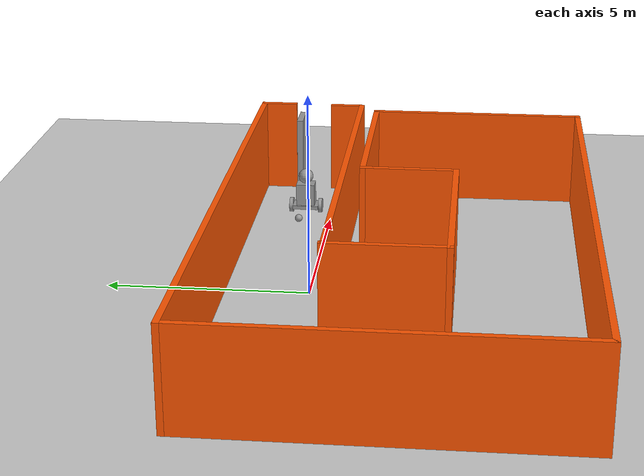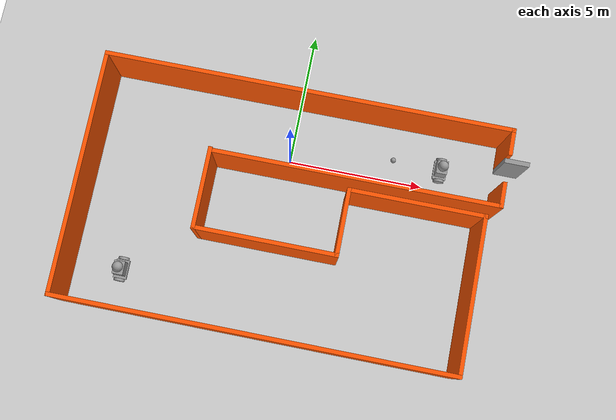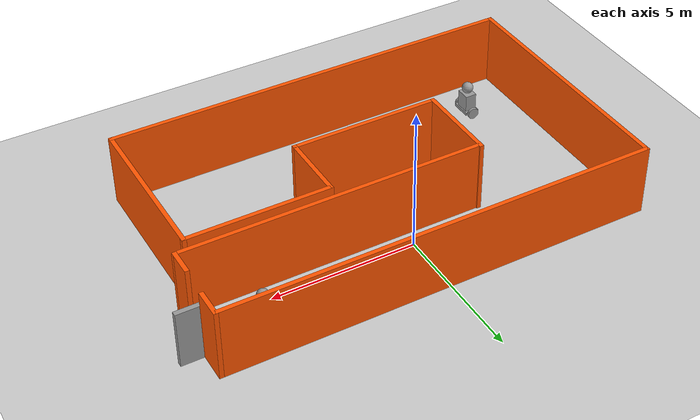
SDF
<sdf version="1.6">
 <world name="default">
  <light name="sun" type="directional">
   <pose>0 0 10 0 -0 0</pose>
   <diffuse>0.8 0.8 0.8 1</diffuse>
   <specular>0.2 0.2 0.2 1</specular>
   <attenuation>
    <range>1000</range>
    <constant>0.9</constant>
    <linear>0.01</linear>
    <quadratic>0.001</quadratic>
   </attenuation>
   <direction>-0.5 0.1 -0.9</direction>
  </light>
  <model name="ground_plane">
   <static>1</static>
   <link name="link">
    <collision name="collision">
     <geometry><plane><normal>0 0 1</normal><size>100 100</size></plane></geometry>
     <surface><friction><ode><mu>100</mu><mu2>50</mu2></ode></friction></surface>
    </collision>
    <visual name="visual">
     <cast_shadows>0</cast_shadows>
     <geometry><plane><normal>0 0 1</normal><size>100 100</size></plane></geometry>
     <material>
      <script><uri>file://media/materials/scripts/gazebo.material</uri><name>Gazebo/Grey</name></script>
     </material>
    </visual>
   </link>
  </model>
  <gravity>0 0 -9.8</gravity>
  <magnetic_field>6e-06 2.3e-05 -4.2e-05</magnetic_field>
  <atmosphere type="adiabatic"/>
  <physics name="default_physics" default="0" type="ode">
   <max_step_size>0.001</max_step_size>
   <real_time_factor>1</real_time_factor>
   <real_time_update_rate>1000</real_time_update_rate>
  </physics>
  <scene><ambient>0.4 0.4 0.4 1</ambient><background>0.7 0.7 0.7 1</background><shadows>1</shadows></scene>
  <spherical_coordinates>
   <surface_model>EARTH_WGS84</surface_model>
   <latitude_deg>0</latitude_deg>
   <longitude_deg>0</longitude_deg>
   <elevation>0</elevation>
   <heading_deg>0</heading_deg>
  </spherical_coordinates>
  <model name="robot">
   <link name="link_0">
    <pose>0 0 -0.23 0 -0 0</pose>
    <inertial>
     <mass>1</mass>
     <inertia>
      <ixx>0.166667</ixx>
      <ixy>0</ixy>
      <ixz>0</ixz>
      <iyy>0.166667</iyy>
      <iyz>0</iyz>
      <izz>0.166667</izz>
     </inertia>
    </inertial>
    <visual name="visual">
     <geometry><box><size>0.5 0.7 0.1</size></box></geometry>
     <material>
      <lighting>1</lighting>
      <script><uri>file://media/materials/scripts/gazebo.material</uri><name>Gazebo/Grey</name></script>
      <shader type="pixel"><normal_map>__default__</normal_map></shader>
      <ambient>0.3 0.3 0.3 1</ambient>
      <diffuse>0.7 0.7 0.7 1</diffuse>
      <specular>0.01 0.01 0.01 1</specular>
      <emissive>0 0 0 1</emissive>
     </material>
    </visual>
    <collision name="collision">
     <geometry><box><size>0.5 0.7 0.1</size></box></geometry>
     <surface>
      <friction>
       <ode><mu>1</mu><mu2>1</mu2><fdir1>0 0 0</fdir1><slip1>0</slip1><slip2>0</slip2></ode>
       <torsional>
        <coefficient>1</coefficient>
        <patch_radius>0</patch_radius>
        <surface_radius>0</surface_radius>
        <use_patch_radius>1</use_patch_radius>
        <ode><slip>0</slip></ode>
       </torsional>
      </friction>
      <bounce><restitution_coefficient>0</restitution_coefficient><threshold>1e+06</threshold></bounce>
      <contact>
       <collide_without_contact>0</collide_without_contact>
       <collide_without_contact_bitmask>1</collide_without_contact_bitmask>
       <collide_bitmask>1</collide_bitmask>
       <ode>
        <soft_cfm>0</soft_cfm>
        <soft_erp>0.2</soft_erp>
        <kp>1e+13</kp>
        <kd>1</kd>
        <max_vel>0.01</max_vel>
        <min_depth>0</min_depth>
       </ode>
       <bullet>
        <split_impulse>1</split_impulse>
        <split_impulse_penetration_threshold>-0.01</split_impulse_penetration_threshold>
        <soft_cfm>0</soft_cfm>
        <soft_erp>0.2</soft_erp>
        <kp>1e+13</kp>
        <kd>1</kd>
       </bullet>
      </contact>
     </surface>
    </collision>
   </link>
   <link name="link_1">
    <pose>0 -0.400019 -0.23 1.5707 -0 0</pose>
    <inertial>
     <mass>1</mass>
     <inertia><ixx>0.145833</ixx><ixy>0</ixy><ixz>0</ixz><iyy>0.145833</iyy><iyz>0</iyz><izz>0.125</izz></inertia>
    </inertial>
    <visual name="visual">
     <geometry><cylinder><radius>0.2</radius><length>0.1</length></cylinder></geometry>
     <material>
      <lighting>1</lighting>
      <script><uri>file://media/materials/scripts/gazebo.material</uri><name>Gazebo/Grey</name></script>
      <shader type="pixel"><normal_map>__default__</normal_map></shader>
      <ambient>0.3 0.3 0.3 1</ambient>
      <diffuse>0.7 0.7 0.7 1</diffuse>
      <specular>0.01 0.01 0.01 1</specular>
      <emissive>0 0 0 1</emissive>
     </material>
    </visual>
    <collision name="collision">
     <geometry><cylinder><radius>0.2</radius><length>0.1</length></cylinder></geometry>
     <surface>
      <friction>
       <ode><mu>1</mu><mu2>1</mu2><fdir1>0 0 0</fdir1><slip1>0</slip1><slip2>0</slip2></ode>
       <torsional>
        <coefficient>1</coefficient>
        <patch_radius>0</patch_radius>
        <surface_radius>0</surface_radius>
        <use_patch_radius>1</use_patch_radius>
        <ode><slip>0</slip></ode>
       </torsional>
      </friction>
      <bounce><restitution_coefficient>0</restitution_coefficient><threshold>1e+06</threshold></bounce>
      <contact>
       <collide_without_contact>0</collide_without_contact>
       <collide_without_contact_bitmask>1</collide_without_contact_bitmask>
       <collide_bitmask>1</collide_bitmask>
       <ode>
        <soft_cfm>0</soft_cfm>
        <soft_erp>0.2</soft_erp>
        <kp>1e+13</kp>
        <kd>1</kd>
        <max_vel>0.01</max_vel>
        <min_depth>0</min_depth>
       </ode>
       <bullet>
        <split_impulse>1</split_impulse>
        <split_impulse_penetration_threshold>-0.01</split_impulse_penetration_threshold>
        <soft_cfm>0</soft_cfm>
        <soft_erp>0.2</soft_erp>
        <kp>1e+13</kp>
        <kd>1</kd>
       </bullet>
      </contact>
     </surface>
    </collision>
   </link>
   <link name="link_1_clone">
    <pose>0 0.400019 -0.23 1.5707 -0 0</pose>
    <inertial>
     <mass>1</mass>
     <inertia><ixx>0.145833</ixx><ixy>0</ixy><ixz>0</ixz><iyy>0.145833</iyy><iyz>0</iyz><izz>0.125</izz></inertia>
    </inertial>
    <visual name="visual">
     <geometry><cylinder><radius>0.2</radius><length>0.1</length></cylinder></geometry>
     <material>
      <lighting>1</lighting>
      <script><uri>file://media/materials/scripts/gazebo.material</uri><name>Gazebo/Grey</name></script>
      <shader type="pixel"><normal_map>__default__</normal_map></shader>
      <ambient>0.3 0.3 0.3 1</ambient>
      <diffuse>0.7 0.7 0.7 1</diffuse>
      <specular>0.01 0.01 0.01 1</specular>
      <emissive>0 0 0 1</emissive>
     </material>
    </visual>
    <collision name="collision">
     <geometry><cylinder><radius>0.2</radius><length>0.1</length></cylinder></geometry>
     <surface>
      <friction>
       <ode><mu>1</mu><mu2>1</mu2><fdir1>0 0 0</fdir1><slip1>0</slip1><slip2>0</slip2></ode>
       <torsional>
        <coefficient>1</coefficient>
        <patch_radius>0</patch_radius>
        <surface_radius>0</surface_radius>
        <use_patch_radius>1</use_patch_radius>
        <ode><slip>0</slip></ode>
       </torsional>
      </friction>
      <bounce><restitution_coefficient>0</restitution_coefficient><threshold>1e+06</threshold></bounce>
      <contact>
       <collide_without_contact>0</collide_without_contact>
       <collide_without_contact_bitmask>1</collide_without_contact_bitmask>
       <collide_bitmask>1</collide_bitmask>
       <ode>
        <soft_cfm>0</soft_cfm>
        <soft_erp>0.2</soft_erp>
        <kp>1e+13</kp>
        <kd>1</kd>
        <max_vel>0.01</max_vel>
        <min_depth>0</min_depth>
       </ode>
       <bullet>
        <split_impulse>1</split_impulse>
        <split_impulse_penetration_threshold>-0.01</split_impulse_penetration_threshold>
        <soft_cfm>0</soft_cfm>
        <soft_erp>0.2</soft_erp>
        <kp>1e+13</kp>
        <kd>1</kd>
       </bullet>
      </contact>
     </surface>
    </collision>
   </link>
   <link name="link_4">
    <pose>0 0 0.07 0 -0 0</pose>
    <inertial>
     <mass>1</mass>
     <inertia>
      <ixx>0.166667</ixx>
      <ixy>0</ixy>
      <ixz>0</ixz>
      <iyy>0.166667</iyy>
      <iyz>0</iyz>
      <izz>0.166667</izz>
     </inertia>
    </inertial>
    <visual name="visual">
     <geometry><box><size>0.4 0.5 0.7</size></box></geometry>
     <material>
      <lighting>1</lighting>
      <script><uri>file://media/materials/scripts/gazebo.material</uri><name>Gazebo/Grey</name></script>
      <shader type="pixel"><normal_map>__default__</normal_map></shader>
      <ambient>0.3 0.3 0.3 1</ambient>
      <diffuse>0.7 0.7 0.7 1</diffuse>
      <specular>0.01 0.01 0.01 1</specular>
      <emissive>0 0 0 1</emissive>
     </material>
    </visual>
    <collision name="collision">
     <geometry><box><size>0.4 0.5 0.7</size></box></geometry>
     <surface>
      <friction>
       <ode><mu>1</mu><mu2>1</mu2><fdir1>0 0 0</fdir1><slip1>0</slip1><slip2>0</slip2></ode>
       <torsional>
        <coefficient>1</coefficient>
        <patch_radius>0</patch_radius>
        <surface_radius>0</surface_radius>
        <use_patch_radius>1</use_patch_radius>
        <ode><slip>0</slip></ode>
       </torsional>
      </friction>
      <bounce><restitution_coefficient>0</restitution_coefficient><threshold>1e+06</threshold></bounce>
      <contact>
       <collide_without_contact>0</collide_without_contact>
       <collide_without_contact_bitmask>1</collide_without_contact_bitmask>
       <collide_bitmask>1</collide_bitmask>
       <ode>
        <soft_cfm>0</soft_cfm>
        <soft_erp>0.2</soft_erp>
        <kp>1e+13</kp>
        <kd>1</kd>
        <max_vel>0.01</max_vel>
        <min_depth>0</min_depth>
       </ode>
       <bullet>
        <split_impulse>1</split_impulse>
        <split_impulse_penetration_threshold>-0.01</split_impulse_penetration_threshold>
        <soft_cfm>0</soft_cfm>
        <soft_erp>0.2</soft_erp>
        <kp>1e+13</kp>
        <kd>1</kd>
       </bullet>
      </contact>
     </surface>
    </collision>
   </link>
   <link name="link_5">
    <pose>0 0 0.62 0 -0 0</pose>
    <inertial>
     <mass>1</mass>
     <inertia><ixx>0.1</ixx><ixy>0</ixy><ixz>0</ixz><iyy>0.1</iyy><iyz>0</iyz><izz>0.1</izz></inertia>
    </inertial>
    <visual name="visual">
     <geometry><sphere><radius>0.2</radius></sphere></geometry>
     <material>
      <lighting>1</lighting>
      <script><uri>file://media/materials/scripts/gazebo.material</uri><name>Gazebo/Grey</name></script>
      <shader type="pixel"><normal_map>__default__</normal_map></shader>
      <ambient>0.3 0.3 0.3 1</ambient>
      <diffuse>0.7 0.7 0.7 1</diffuse>
      <specular>0.01 0.01 0.01 1</specular>
      <emissive>0 0 0 1</emissive>
     </material>
    </visual>
    <collision name="collision">
     <geometry><sphere><radius>0.2</radius></sphere></geometry>
     <surface>
      <friction>
       <ode><mu>1</mu><mu2>1</mu2><fdir1>0 0 0</fdir1><slip1>0</slip1><slip2>0</slip2></ode>
       <torsional>
        <coefficient>1</coefficient>
        <patch_radius>0</patch_radius>
        <surface_radius>0</surface_radius>
        <use_patch_radius>1</use_patch_radius>
        <ode><slip>0</slip></ode>
       </torsional>
      </friction>
      <bounce><restitution_coefficient>0</restitution_coefficient><threshold>1e+06</threshold></bounce>
      <contact>
       <collide_without_contact>0</collide_without_contact>
       <collide_without_contact_bitmask>1</collide_without_contact_bitmask>
       <collide_bitmask>1</collide_bitmask>
       <ode>
        <soft_cfm>0</soft_cfm>
        <soft_erp>0.2</soft_erp>
        <kp>1e+13</kp>
        <kd>1</kd>
        <max_vel>0.01</max_vel>
        <min_depth>0</min_depth>
       </ode>
       <bullet>
        <split_impulse>1</split_impulse>
        <split_impulse_penetration_threshold>-0.01</split_impulse_penetration_threshold>
        <soft_cfm>0</soft_cfm>
        <soft_erp>0.2</soft_erp>
        <kp>1e+13</kp>
        <kd>1</kd>
       </bullet>
      </contact>
     </surface>
    </collision>
   </link>
   <joint name="link_0_JOINT_0" type="revolute">
    <parent>link_0</parent>
    <child>link_1</child>
    <axis>
     <xyz>0 0 1</xyz>
     <use_parent_model_frame>0</use_parent_model_frame>
     <limit>
      <lower>-1.79769e+308</lower>
      <upper>1.79769e+308</upper>
      <effort>-1</effort>
      <velocity>-1</velocity>
     </limit>
     <dynamics>
      <spring_reference>0</spring_reference>
      <spring_stiffness>0</spring_stiffness>
      <damping>0</damping>
     </dynamics>
    </axis>
    <physics>
     <ode><limit><cfm>0</cfm><erp>0.2</erp></limit><suspension><cfm>0</cfm><erp>0.2</erp></suspension></ode>
    </physics>
   </joint>
   <joint name="link_0_JOINT_2" type="revolute">
    <parent>link_0</parent>
    <child>link_1_clone</child>
    <axis>
     <xyz>0 0 1</xyz>
     <use_parent_model_frame>0</use_parent_model_frame>
     <limit>
      <lower>-1.79769e+308</lower>
      <upper>1.79769e+308</upper>
      <effort>-1</effort>
      <velocity>-1</velocity>
     </limit>
     <dynamics>
      <spring_reference>0</spring_reference>
      <spring_stiffness>0</spring_stiffness>
      <damping>0</damping>
     </dynamics>
    </axis>
    <physics>
     <ode><limit><cfm>0</cfm><erp>0.2</erp></limit><suspension><cfm>0</cfm><erp>0.2</erp></suspension></ode>
    </physics>
   </joint>
   <joint name="link_0_JOINT_3" type="revolute">
    <parent>link_0</parent>
    <child>link_1</child>
    <axis>
     <xyz>0 0 1</xyz>
     <use_parent_model_frame>0</use_parent_model_frame>
     <limit>
      <lower>-1.79769e+308</lower>
      <upper>1.79769e+308</upper>
      <effort>-1</effort>
      <velocity>-1</velocity>
     </limit>
     <dynamics>
      <spring_reference>0</spring_reference>
      <spring_stiffness>0</spring_stiffness>
      <damping>0</damping>
     </dynamics>
    </axis>
    <physics>
     <ode><limit><cfm>0</cfm><erp>0.2</erp></limit><suspension><cfm>0</cfm><erp>0.2</erp></suspension></ode>
    </physics>
   </joint>
   <joint name="link_0_JOINT_4" type="revolute">
    <parent>link_0</parent>
    <child>link_1_clone</child>
    <axis>
     <xyz>0 0 1</xyz>
     <use_parent_model_frame>0</use_parent_model_frame>
     <limit>
      <lower>-1.79769e+308</lower>
      <upper>1.79769e+308</upper>
      <effort>-1</effort>
      <velocity>-1</velocity>
     </limit>
     <dynamics>
      <spring_reference>0</spring_reference>
      <spring_stiffness>0</spring_stiffness>
      <damping>0</damping>
     </dynamics>
    </axis>
    <physics>
     <ode><limit><cfm>0</cfm><erp>0.2</erp></limit><suspension><cfm>0</cfm><erp>0.2</erp></suspension></ode>
    </physics>
   </joint>
   <joint name="link_0_JOINT_5" type="revolute">
    <parent>link_0</parent>
    <child>link_4</child>
    <axis>
     <xyz>0 0 1</xyz>
     <use_parent_model_frame>0</use_parent_model_frame>
     <limit>
      <lower>-1.79769e+308</lower>
      <upper>1.79769e+308</upper>
      <effort>-1</effort>
      <velocity>-1</velocity>
     </limit>
     <dynamics>
      <spring_reference>0</spring_reference>
      <spring_stiffness>0</spring_stiffness>
      <damping>0</damping>
     </dynamics>
    </axis>
    <physics>
     <ode><limit><cfm>0</cfm><erp>0.2</erp></limit><suspension><cfm>0</cfm><erp>0.2</erp></suspension></ode>
    </physics>
   </joint>
   <joint name="link_4_JOINT_6" type="revolute">
    <parent>link_4</parent>
    <child>link_5</child>
    <axis>
     <xyz>0 0 1</xyz>
     <use_parent_model_frame>0</use_parent_model_frame>
     <limit>
      <lower>-1.79769e+308</lower>
      <upper>1.79769e+308</upper>
      <effort>-1</effort>
      <velocity>-1</velocity>
     </limit>
     <dynamics>
      <spring_reference>0</spring_reference>
      <spring_stiffness>0</spring_stiffness>
      <damping>0</damping>
     </dynamics>
    </axis>
    <physics>
     <ode><limit><cfm>0</cfm><erp>0.2</erp></limit><suspension><cfm>0</cfm><erp>0.2</erp></suspension></ode>
    </physics>
   </joint>
   <static>0</static>
   <pose>5.59248 0.737497 0.430005 0 -0 0</pose>
  </model>
  <model name="mybuilding">
   <pose>0.24617 -2.27298 0 0 -0 0</pose>
   <link name="Door_0">
    <collision name="Door_0_Collision">
     <geometry><box><size>0.9 0.17 2</size></box></geometry>
     <pose>0 0 1 0 -0 0</pose>
    </collision>
    <visual name="Door_0_Visual">
     <pose>0 0 1 0 -0 0</pose>
     <geometry><box><size>0.9 0.17 2</size></box></geometry>
     <material>
      <script><uri>file://media/materials/scripts/gazebo.material</uri><name>Gazebo/Grey</name></script>
     </material>
    </visual>
    <pose>7.805 3.415 0 0 -0 0</pose>
   </link>
   <link name="Wall_1">
    <collision name="Wall_1_Collision">
     <geometry><box><size>1 0.15 2.5</size></box></geometry>
     <pose>0 0 1.25 0 -0 0</pose>
    </collision>
    <visual name="Wall_1_Visual">
     <pose>0 0 1.25 0 -0 0</pose>
     <geometry><box><size>1 0.15 2.5</size></box></geometry>
     <material>
      <script><uri>file://media/materials/scripts/gazebo.material</uri><name>Gazebo/Grey</name></script>
      <ambient>1 0.333333 0 1</ambient>
     </material>
     <meta><layer>0</layer></meta>
    </visual>
    <pose>7.425 4 0 0 0 -1.5708</pose>
   </link>
   <link name="Wall_23">
    <collision name="Wall_23_Collision">
     <geometry><box><size>15 0.15 2.5</size></box></geometry>
     <pose>0 0 1.25 0 -0 0</pose>
    </collision>
    <visual name="Wall_23_Visual">
     <pose>0 0 1.25 0 -0 0</pose>
     <geometry><box><size>15 0.15 2.5</size></box></geometry>
     <material>
      <script><uri>file://media/materials/scripts/gazebo.material</uri><name>Gazebo/Grey</name></script>
      <ambient>1 0.333333 0 1</ambient>
     </material>
     <meta><layer>0</layer></meta>
    </visual>
    <pose>0 4.425 0 0 -0 3.14159</pose>
   </link>
   <link name="Wall_25">
    <collision name="Wall_25_Collision">
     <geometry><box><size>9 0.15 2.5</size></box></geometry>
     <pose>0 0 1.25 0 -0 0</pose>
    </collision>
    <visual name="Wall_25_Visual">
     <pose>0 0 1.25 0 -0 0</pose>
     <geometry><box><size>9 0.15 2.5</size></box></geometry>
     <material>
      <script><uri>file://media/materials/scripts/gazebo.material</uri><name>Gazebo/Grey</name></script>
      <ambient>1 0.333333 0 1</ambient>
     </material>
     <meta><layer>0</layer></meta>
    </visual>
    <pose>-7.425 0 0 0 0 -1.5708</pose>
   </link>
   <link name="Wall_26">
    <collision name="Wall_26_Collision">
     <geometry><box><size>14.5 0.15 2.5</size></box></geometry>
     <pose>0 0 1.25 0 -0 0</pose>
    </collision>
    <visual name="Wall_26_Visual">
     <pose>0 0 1.25 0 -0 0</pose>
     <geometry><box><size>14.5 0.15 2.5</size></box></geometry>
     <material>
      <script><uri>file://media/materials/scripts/gazebo.material</uri><name>Gazebo/Grey</name></script>
      <ambient>1 0.333333 0 1</ambient>
     </material>
     <meta><layer>0</layer></meta>
    </visual>
    <pose>-0.25 -4.425 0 0 -0 0</pose>
   </link>
   <link name="Wall_27">
    <collision name="Wall_27_Collision">
     <geometry><box><size>5.75 0.15 2.5</size></box></geometry>
     <pose>0 0 1.25 0 -0 0</pose>
    </collision>
    <visual name="Wall_27_Visual">
     <pose>0 0 1.25 0 -0 0</pose>
     <geometry><box><size>5.75 0.15 2.5</size></box></geometry>
     <material>
      <script><uri>file://media/materials/scripts/gazebo.material</uri><name>Gazebo/Grey</name></script>
      <ambient>1 0.333333 0 1</ambient>
     </material>
     <meta><layer>0</layer></meta>
    </visual>
    <pose>6.925 -1.625 0 0 -0 1.5708</pose>
   </link>
   <link name="Wall_28">
    <collision name="Wall_28_Collision">
     <geometry><box><size>5 0.15 2.5</size></box></geometry>
     <pose>0 0 1.25 0 -0 0</pose>
    </collision>
    <visual name="Wall_28_Visual">
     <pose>0 0 1.25 0 -0 0</pose>
     <geometry><box><size>5 0.15 2.5</size></box></geometry>
     <material>
      <script><uri>file://media/materials/scripts/gazebo.material</uri><name>Gazebo/Grey</name></script>
      <ambient>1 0.333333 0 1</ambient>
     </material>
     <meta><layer>0</layer></meta>
    </visual>
    <pose>4.5 1.175 0 0 -0 3.14159</pose>
   </link>
   <link name="Wall_29">
    <collision name="Wall_29_Collision">
     <geometry><box><size>2.5 0.15 2.5</size></box></geometry>
     <pose>0 0 1.25 0 -0 0</pose>
    </collision>
    <visual name="Wall_29_Visual">
     <pose>0 0 1.25 0 -0 0</pose>
     <geometry><box><size>2.5 0.15 2.5</size></box></geometry>
     <material>
      <script><uri>file://media/materials/scripts/gazebo.material</uri><name>Gazebo/Grey</name></script>
      <ambient>1 0.333333 0 1</ambient>
     </material>
     <meta><layer>0</layer></meta>
    </visual>
    <pose>2.075 0 0 0 0 -1.5708</pose>
   </link>
   <link name="Wall_30">
    <collision name="Wall_30_Collision">
     <geometry><box><size>5.25 0.15 2.5</size></box></geometry>
     <pose>0 0 1.25 0 -0 0</pose>
    </collision>
    <visual name="Wall_30_Visual">
     <pose>0 0 1.25 0 -0 0</pose>
     <geometry><box><size>5.25 0.15 2.5</size></box></geometry>
     <material>
      <script><uri>file://media/materials/scripts/gazebo.material</uri><name>Gazebo/Grey</name></script>
      <ambient>1 0.333333 0 1</ambient>
     </material>
     <meta><layer>0</layer></meta>
    </visual>
    <pose>-0.475 -1.175 0 0 -0 3.14159</pose>
   </link>
   <link name="Wall_41">
    <collision name="Wall_41_Collision">
     <geometry><box><size>0.940974 0.15 2.5</size></box></geometry>
     <pose>0 0 1.25 0 -0 0</pose>
    </collision>
    <visual name="Wall_41_Visual">
     <pose>0 0 1.25 0 -0 0</pose>
     <geometry><box><size>0.940974 0.15 2.5</size></box></geometry>
     <material>
      <script><uri>file://media/materials/scripts/gazebo.material</uri><name>Gazebo/Grey</name></script>
      <ambient>1 0.333333 0 1</ambient>
     </material>
     <meta><layer>0</layer></meta>
    </visual>
    <pose>7.39756 2.04345 0 0 0 -1.5708</pose>
   </link>
   <link name="Wall_42">
    <collision name="Wall_42_Collision">
     <geometry><box><size>10.5 0.15 2.5</size></box></geometry>
     <pose>0 0 1.25 0 -0 0</pose>
    </collision>
    <visual name="Wall_42_Visual">
     <pose>0 0 1.25 0 -0 0</pose>
     <geometry><box><size>10.5 0.15 2.5</size></box></geometry>
     <material>
      <script><uri>file://media/materials/scripts/gazebo.material</uri><name>Gazebo/Grey</name></script>
      <ambient>1 0.333333 0 1</ambient>
     </material>
     <meta><layer>0</layer></meta>
    </visual>
    <pose>2.22256 1.63499 0 0 -0 3.14159</pose>
   </link>
   <link name="Wall_44">
    <collision name="Wall_44_Collision">
     <geometry><box><size>3 0.15 2.5</size></box></geometry>
     <pose>0 0 1.25 0 -0 0</pose>
    </collision>
    <visual name="Wall_44_Visual">
     <pose>0 0 1.25 0 -0 0</pose>
     <geometry><box><size>3 0.15 2.5</size></box></geometry>
     <material>
      <script><uri>file://media/materials/scripts/gazebo.material</uri><name>Gazebo/Grey</name></script>
      <ambient>1 0.333333 0 1</ambient>
     </material>
     <meta><layer>0</layer></meta>
    </visual>
    <pose>-3.025 0.25 0 0 -0 1.5708</pose>
   </link>
   <static>1</static>
  </model>
  <model name="robot_clone">
   <link name="link_0">
    <pose>0 0 -0.23 0 -0 0</pose>
    <inertial>
     <mass>1</mass>
     <inertia>
      <ixx>0.166667</ixx>
      <ixy>0</ixy>
      <ixz>0</ixz>
      <iyy>0.166667</iyy>
      <iyz>0</iyz>
      <izz>0.166667</izz>
     </inertia>
    </inertial>
    <visual name="visual">
     <geometry><box><size>0.5 0.7 0.1</size></box></geometry>
     <material>
      <lighting>1</lighting>
      <script><uri>file://media/materials/scripts/gazebo.material</uri><name>Gazebo/Grey</name></script>
      <shader type="pixel"><normal_map>__default__</normal_map></shader>
      <ambient>0.3 0.3 0.3 1</ambient>
      <diffuse>0.7 0.7 0.7 1</diffuse>
      <specular>0.01 0.01 0.01 1</specular>
      <emissive>0 0 0 1</emissive>
     </material>
    </visual>
    <collision name="collision">
     <geometry><box><size>0.5 0.7 0.1</size></box></geometry>
     <surface>
      <friction>
       <ode><mu>1</mu><mu2>1</mu2><fdir1>0 0 0</fdir1><slip1>0</slip1><slip2>0</slip2></ode>
       <torsional>
        <coefficient>1</coefficient>
        <patch_radius>0</patch_radius>
        <surface_radius>0</surface_radius>
        <use_patch_radius>1</use_patch_radius>
        <ode><slip>0</slip></ode>
       </torsional>
      </friction>
      <bounce><restitution_coefficient>0</restitution_coefficient><threshold>1e+06</threshold></bounce>
      <contact>
       <collide_without_contact>0</collide_without_contact>
       <collide_without_contact_bitmask>1</collide_without_contact_bitmask>
       <collide_bitmask>1</collide_bitmask>
       <ode>
        <soft_cfm>0</soft_cfm>
        <soft_erp>0.2</soft_erp>
        <kp>1e+13</kp>
        <kd>1</kd>
        <max_vel>0.01</max_vel>
        <min_depth>0</min_depth>
       </ode>
       <bullet>
        <split_impulse>1</split_impulse>
        <split_impulse_penetration_threshold>-0.01</split_impulse_penetration_threshold>
        <soft_cfm>0</soft_cfm>
        <soft_erp>0.2</soft_erp>
        <kp>1e+13</kp>
        <kd>1</kd>
       </bullet>
      </contact>
     </surface>
    </collision>
   </link>
   <link name="link_1">
    <pose>0 -0.400019 -0.23 1.5707 -0 0</pose>
    <inertial>
     <mass>1</mass>
     <inertia><ixx>0.145833</ixx><ixy>0</ixy><ixz>0</ixz><iyy>0.145833</iyy><iyz>0</iyz><izz>0.125</izz></inertia>
    </inertial>
    <visual name="visual">
     <geometry><cylinder><radius>0.2</radius><length>0.1</length></cylinder></geometry>
     <material>
      <lighting>1</lighting>
      <script><uri>file://media/materials/scripts/gazebo.material</uri><name>Gazebo/Grey</name></script>
      <shader type="pixel"><normal_map>__default__</normal_map></shader>
      <ambient>0.3 0.3 0.3 1</ambient>
      <diffuse>0.7 0.7 0.7 1</diffuse>
      <specular>0.01 0.01 0.01 1</specular>
      <emissive>0 0 0 1</emissive>
     </material>
    </visual>
    <collision name="collision">
     <geometry><cylinder><radius>0.2</radius><length>0.1</length></cylinder></geometry>
     <surface>
      <friction>
       <ode><mu>1</mu><mu2>1</mu2><fdir1>0 0 0</fdir1><slip1>0</slip1><slip2>0</slip2></ode>
       <torsional>
        <coefficient>1</coefficient>
        <patch_radius>0</patch_radius>
        <surface_radius>0</surface_radius>
        <use_patch_radius>1</use_patch_radius>
        <ode><slip>0</slip></ode>
       </torsional>
      </friction>
      <bounce><restitution_coefficient>0</restitution_coefficient><threshold>1e+06</threshold></bounce>
      <contact>
       <collide_without_contact>0</collide_without_contact>
       <collide_without_contact_bitmask>1</collide_without_contact_bitmask>
       <collide_bitmask>1</collide_bitmask>
       <ode>
        <soft_cfm>0</soft_cfm>
        <soft_erp>0.2</soft_erp>
        <kp>1e+13</kp>
        <kd>1</kd>
        <max_vel>0.01</max_vel>
        <min_depth>0</min_depth>
       </ode>
       <bullet>
        <split_impulse>1</split_impulse>
        <split_impulse_penetration_threshold>-0.01</split_impulse_penetration_threshold>
        <soft_cfm>0</soft_cfm>
        <soft_erp>0.2</soft_erp>
        <kp>1e+13</kp>
        <kd>1</kd>
       </bullet>
      </contact>
     </surface>
    </collision>
   </link>
   <link name="link_1_clone">
    <pose>0 0.400019 -0.23 1.5707 -0 0</pose>
    <inertial>
     <mass>1</mass>
     <inertia><ixx>0.145833</ixx><ixy>0</ixy><ixz>0</ixz><iyy>0.145833</iyy><iyz>0</iyz><izz>0.125</izz></inertia>
    </inertial>
    <visual name="visual">
     <geometry><cylinder><radius>0.2</radius><length>0.1</length></cylinder></geometry>
     <material>
      <lighting>1</lighting>
      <script><uri>file://media/materials/scripts/gazebo.material</uri><name>Gazebo/Grey</name></script>
      <shader type="pixel"><normal_map>__default__</normal_map></shader>
      <ambient>0.3 0.3 0.3 1</ambient>
      <diffuse>0.7 0.7 0.7 1</diffuse>
      <specular>0.01 0.01 0.01 1</specular>
      <emissive>0 0 0 1</emissive>
     </material>
    </visual>
    <collision name="collision">
     <geometry><cylinder><radius>0.2</radius><length>0.1</length></cylinder></geometry>
     <surface>
      <friction>
       <ode><mu>1</mu><mu2>1</mu2><fdir1>0 0 0</fdir1><slip1>0</slip1><slip2>0</slip2></ode>
       <torsional>
        <coefficient>1</coefficient>
        <patch_radius>0</patch_radius>
        <surface_radius>0</surface_radius>
        <use_patch_radius>1</use_patch_radius>
        <ode><slip>0</slip></ode>
       </torsional>
      </friction>
      <bounce><restitution_coefficient>0</restitution_coefficient><threshold>1e+06</threshold></bounce>
      <contact>
       <collide_without_contact>0</collide_without_contact>
       <collide_without_contact_bitmask>1</collide_without_contact_bitmask>
       <collide_bitmask>1</collide_bitmask>
       <ode>
        <soft_cfm>0</soft_cfm>
        <soft_erp>0.2</soft_erp>
        <kp>1e+13</kp>
        <kd>1</kd>
        <max_vel>0.01</max_vel>
        <min_depth>0</min_depth>
       </ode>
       <bullet>
        <split_impulse>1</split_impulse>
        <split_impulse_penetration_threshold>-0.01</split_impulse_penetration_threshold>
        <soft_cfm>0</soft_cfm>
        <soft_erp>0.2</soft_erp>
        <kp>1e+13</kp>
        <kd>1</kd>
       </bullet>
      </contact>
     </surface>
    </collision>
   </link>
   <link name="link_4">
    <pose>0 0 0.07 0 -0 0</pose>
    <inertial>
     <mass>1</mass>
     <inertia>
      <ixx>0.166667</ixx>
      <ixy>0</ixy>
      <ixz>0</ixz>
      <iyy>0.166667</iyy>
      <iyz>0</iyz>
      <izz>0.166667</izz>
     </inertia>
    </inertial>
    <visual name="visual">
     <geometry><box><size>0.4 0.5 0.7</size></box></geometry>
     <material>
      <lighting>1</lighting>
      <script><uri>file://media/materials/scripts/gazebo.material</uri><name>Gazebo/Grey</name></script>
      <shader type="pixel"><normal_map>__default__</normal_map></shader>
      <ambient>0.3 0.3 0.3 1</ambient>
      <diffuse>0.7 0.7 0.7 1</diffuse>
      <specular>0.01 0.01 0.01 1</specular>
      <emissive>0 0 0 1</emissive>
     </material>
    </visual>
    <collision name="collision">
     <geometry><box><size>0.4 0.5 0.7</size></box></geometry>
     <surface>
      <friction>
       <ode><mu>1</mu><mu2>1</mu2><fdir1>0 0 0</fdir1><slip1>0</slip1><slip2>0</slip2></ode>
       <torsional>
        <coefficient>1</coefficient>
        <patch_radius>0</patch_radius>
        <surface_radius>0</surface_radius>
        <use_patch_radius>1</use_patch_radius>
        <ode><slip>0</slip></ode>
       </torsional>
      </friction>
      <bounce><restitution_coefficient>0</restitution_coefficient><threshold>1e+06</threshold></bounce>
      <contact>
       <collide_without_contact>0</collide_without_contact>
       <collide_without_contact_bitmask>1</collide_without_contact_bitmask>
       <collide_bitmask>1</collide_bitmask>
       <ode>
        <soft_cfm>0</soft_cfm>
        <soft_erp>0.2</soft_erp>
        <kp>1e+13</kp>
        <kd>1</kd>
        <max_vel>0.01</max_vel>
        <min_depth>0</min_depth>
       </ode>
       <bullet>
        <split_impulse>1</split_impulse>
        <split_impulse_penetration_threshold>-0.01</split_impulse_penetration_threshold>
        <soft_cfm>0</soft_cfm>
        <soft_erp>0.2</soft_erp>
        <kp>1e+13</kp>
        <kd>1</kd>
       </bullet>
      </contact>
     </surface>
    </collision>
   </link>
   <link name="link_5">
    <pose>0 0 0.62 0 -0 0</pose>
    <inertial>
     <mass>1</mass>
     <inertia><ixx>0.1</ixx><ixy>0</ixy><ixz>0</ixz><iyy>0.1</iyy><iyz>0</iyz><izz>0.1</izz></inertia>
    </inertial>
    <visual name="visual">
     <geometry><sphere><radius>0.2</radius></sphere></geometry>
     <material>
      <lighting>1</lighting>
      <script><uri>file://media/materials/scripts/gazebo.material</uri><name>Gazebo/Grey</name></script>
      <shader type="pixel"><normal_map>__default__</normal_map></shader>
      <ambient>0.3 0.3 0.3 1</ambient>
      <diffuse>0.7 0.7 0.7 1</diffuse>
      <specular>0.01 0.01 0.01 1</specular>
      <emissive>0 0 0 1</emissive>
     </material>
    </visual>
    <collision name="collision">
     <geometry><sphere><radius>0.2</radius></sphere></geometry>
     <surface>
      <friction>
       <ode><mu>1</mu><mu2>1</mu2><fdir1>0 0 0</fdir1><slip1>0</slip1><slip2>0</slip2></ode>
       <torsional>
        <coefficient>1</coefficient>
        <patch_radius>0</patch_radius>
        <surface_radius>0</surface_radius>
        <use_patch_radius>1</use_patch_radius>
        <ode><slip>0</slip></ode>
       </torsional>
      </friction>
      <bounce><restitution_coefficient>0</restitution_coefficient><threshold>1e+06</threshold></bounce>
      <contact>
       <collide_without_contact>0</collide_without_contact>
       <collide_without_contact_bitmask>1</collide_without_contact_bitmask>
       <collide_bitmask>1</collide_bitmask>
       <ode>
        <soft_cfm>0</soft_cfm>
        <soft_erp>0.2</soft_erp>
        <kp>1e+13</kp>
        <kd>1</kd>
        <max_vel>0.01</max_vel>
        <min_depth>0</min_depth>
       </ode>
       <bullet>
        <split_impulse>1</split_impulse>
        <split_impulse_penetration_threshold>-0.01</split_impulse_penetration_threshold>
        <soft_cfm>0</soft_cfm>
        <soft_erp>0.2</soft_erp>
        <kp>1e+13</kp>
        <kd>1</kd>
       </bullet>
      </contact>
     </surface>
    </collision>
   </link>
   <joint name="link_0_JOINT_0" type="revolute">
    <parent>link_0</parent>
    <child>link_1</child>
    <axis>
     <xyz>0 0 1</xyz>
     <use_parent_model_frame>0</use_parent_model_frame>
     <limit>
      <lower>-1.79769e+308</lower>
      <upper>1.79769e+308</upper>
      <effort>-1</effort>
      <velocity>-1</velocity>
     </limit>
     <dynamics>
      <spring_reference>0</spring_reference>
      <spring_stiffness>0</spring_stiffness>
      <damping>0</damping>
     </dynamics>
    </axis>
    <physics>
     <ode><limit><cfm>0</cfm><erp>0.2</erp></limit><suspension><cfm>0</cfm><erp>0.2</erp></suspension></ode>
    </physics>
   </joint>
   <joint name="link_0_JOINT_2" type="revolute">
    <parent>link_0</parent>
    <child>link_1_clone</child>
    <axis>
     <xyz>0 0 1</xyz>
     <use_parent_model_frame>0</use_parent_model_frame>
     <limit>
      <lower>-1.79769e+308</lower>
      <upper>1.79769e+308</upper>
      <effort>-1</effort>
      <velocity>-1</velocity>
     </limit>
     <dynamics>
      <spring_reference>0</spring_reference>
      <spring_stiffness>0</spring_stiffness>
      <damping>0</damping>
     </dynamics>
    </axis>
    <physics>
     <ode><limit><cfm>0</cfm><erp>0.2</erp></limit><suspension><cfm>0</cfm><erp>0.2</erp></suspension></ode>
    </physics>
   </joint>
   <joint name="link_0_JOINT_3" type="revolute">
    <parent>link_0</parent>
    <child>link_1</child>
    <axis>
     <xyz>0 0 1</xyz>
     <use_parent_model_frame>0</use_parent_model_frame>
     <limit>
      <lower>-1.79769e+308</lower>
      <upper>1.79769e+308</upper>
      <effort>-1</effort>
      <velocity>-1</velocity>
     </limit>
     <dynamics>
      <spring_reference>0</spring_reference>
      <spring_stiffness>0</spring_stiffness>
      <damping>0</damping>
     </dynamics>
    </axis>
    <physics>
     <ode><limit><cfm>0</cfm><erp>0.2</erp></limit><suspension><cfm>0</cfm><erp>0.2</erp></suspension></ode>
    </physics>
   </joint>
   <joint name="link_0_JOINT_4" type="revolute">
    <parent>link_0</parent>
    <child>link_1_clone</child>
    <axis>
     <xyz>0 0 1</xyz>
     <use_parent_model_frame>0</use_parent_model_frame>
     <limit>
      <lower>-1.79769e+308</lower>
      <upper>1.79769e+308</upper>
      <effort>-1</effort>
      <velocity>-1</velocity>
     </limit>
     <dynamics>
      <spring_reference>0</spring_reference>
      <spring_stiffness>0</spring_stiffness>
      <damping>0</damping>
     </dynamics>
    </axis>
    <physics>
     <ode><limit><cfm>0</cfm><erp>0.2</erp></limit><suspension><cfm>0</cfm><erp>0.2</erp></suspension></ode>
    </physics>
   </joint>
   <joint name="link_0_JOINT_5" type="revolute">
    <parent>link_0</parent>
    <child>link_4</child>
    <axis>
     <xyz>0 0 1</xyz>
     <use_parent_model_frame>0</use_parent_model_frame>
     <limit>
      <lower>-1.79769e+308</lower>
      <upper>1.79769e+308</upper>
      <effort>-1</effort>
      <velocity>-1</velocity>
     </limit>
     <dynamics>
      <spring_reference>0</spring_reference>
      <spring_stiffness>0</spring_stiffness>
      <damping>0</damping>
     </dynamics>
    </axis>
    <physics>
     <ode><limit><cfm>0</cfm><erp>0.2</erp></limit><suspension><cfm>0</cfm><erp>0.2</erp></suspension></ode>
    </physics>
   </joint>
   <joint name="link_4_JOINT_6" type="revolute">
    <parent>link_4</parent>
    <child>link_5</child>
    <axis>
     <xyz>0 0 1</xyz>
     <use_parent_model_frame>0</use_parent_model_frame>
     <limit>
      <lower>-1.79769e+308</lower>
      <upper>1.79769e+308</upper>
      <effort>-1</effort>
      <velocity>-1</velocity>
     </limit>
     <dynamics>
      <spring_reference>0</spring_reference>
      <spring_stiffness>0</spring_stiffness>
      <damping>0</damping>
     </dynamics>
    </axis>
    <physics>
     <ode><limit><cfm>0</cfm><erp>0.2</erp></limit><suspension><cfm>0</cfm><erp>0.2</erp></suspension></ode>
    </physics>
   </joint>
   <static>0</static>
   <pose>-5.33211 -5.21928 0.430005 0 -0 0</pose>
  </model>
  <model name="my_ball">
   <link name="link_0">
    <inertial>
     <mass>1</mass>
     <inertia><ixx>0.1</ixx><ixy>0</ixy><ixz>0</ixz><iyy>0.1</iyy><iyz>0</iyz><izz>0.1</izz></inertia>
    </inertial>
    <visual name="visual">
     <geometry><sphere><radius>0.1</radius></sphere></geometry>
     <material>
      <lighting>1</lighting>
      <script><uri>file://media/materials/scripts/gazebo.material</uri><name>Gazebo/Grey</name></script>
      <shader type="pixel"><normal_map>__default__</normal_map></shader>
      <ambient>1 1 1 1</ambient>
      <diffuse>1 1 1 1</diffuse>
      <specular>1 1 1 1</specular>
      <emissive>1 1 1 1</emissive>
     </material>
    </visual>
    <collision name="collision">
     <geometry><sphere><radius>0.1</radius></sphere></geometry>
     <surface>
      <friction>
       <ode><mu>1</mu><mu2>1</mu2><fdir1>0 0 0</fdir1><slip1>0</slip1><slip2>0</slip2></ode>
       <torsional>
        <coefficient>1</coefficient>
        <patch_radius>0</patch_radius>
        <surface_radius>0</surface_radius>
        <use_patch_radius>1</use_patch_radius>
        <ode><slip>0</slip></ode>
       </torsional>
      </friction>
      <bounce><restitution_coefficient>0</restitution_coefficient><threshold>1e+06</threshold></bounce>
      <contact>
       <collide_without_contact>0</collide_without_contact>
       <collide_without_contact_bitmask>1</collide_without_contact_bitmask>
       <collide_bitmask>1</collide_bitmask>
       <ode>
        <soft_cfm>0</soft_cfm>
        <soft_erp>0.2</soft_erp>
        <kp>1e+13</kp>
        <kd>1</kd>
        <max_vel>0.01</max_vel>
        <min_depth>0</min_depth>
       </ode>
       <bullet>
        <split_impulse>1</split_impulse>
        <split_impulse_penetration_threshold>-0.01</split_impulse_penetration_threshold>
        <soft_cfm>0</soft_cfm>
        <soft_erp>0.2</soft_erp>
        <kp>1e+13</kp>
        <kd>1</kd>
       </bullet>
      </contact>
     </surface>
    </collision>
   </link>
   <static>0</static>
   <pose>3.78034 0.721865 0.5 0 -0 0</pose>
  </model>
 </world>
</sdf>
